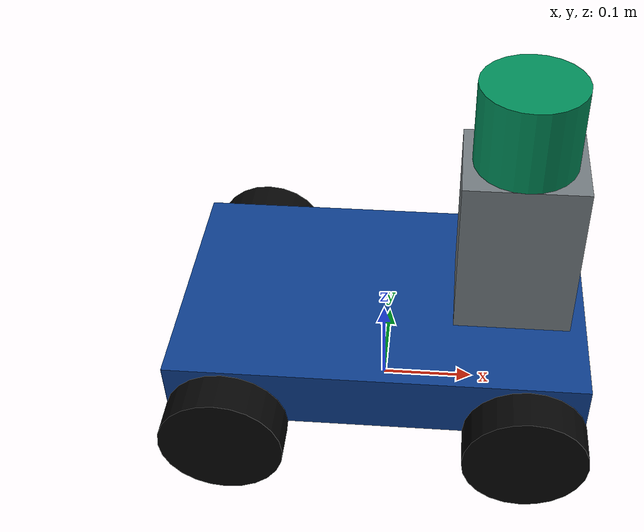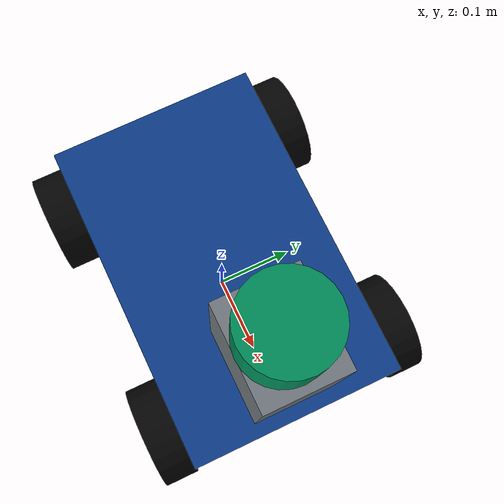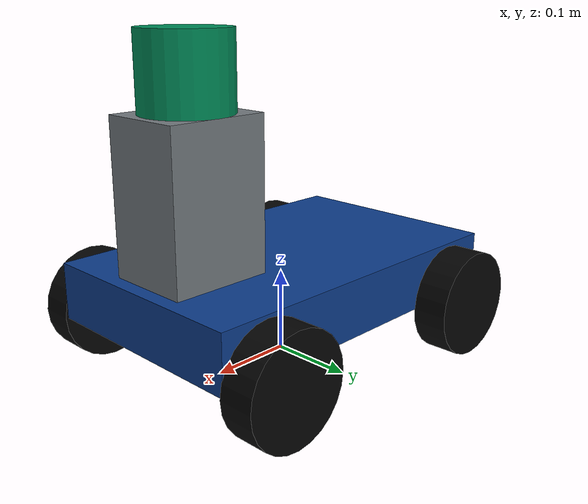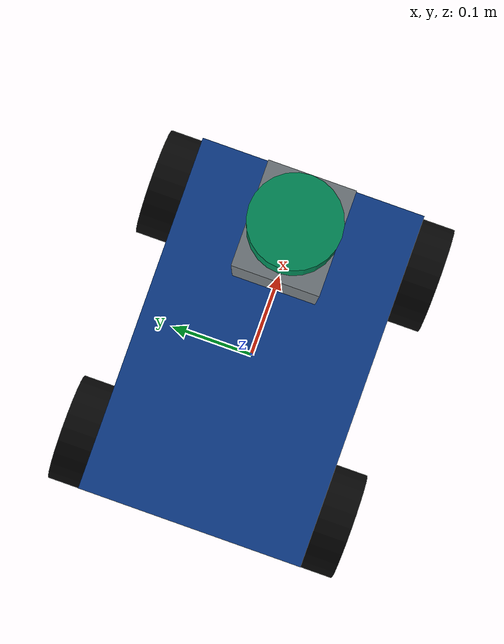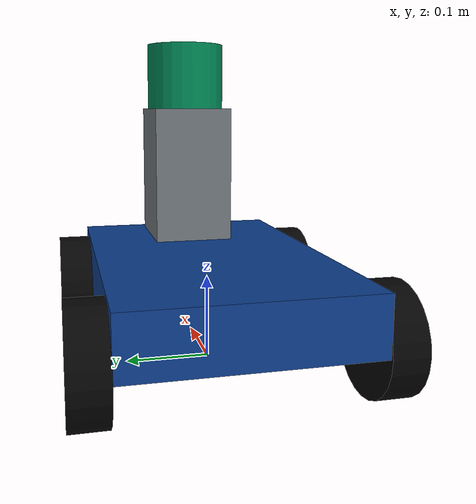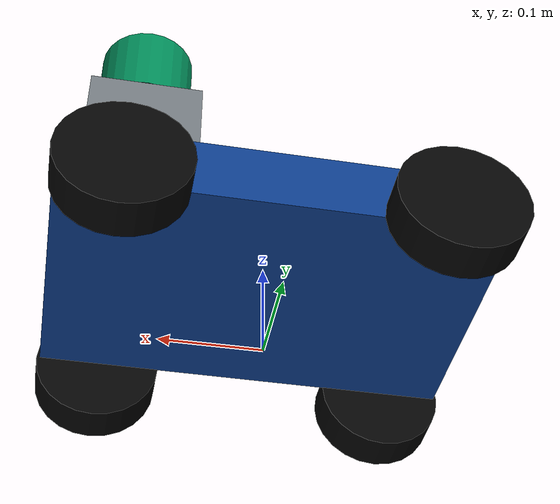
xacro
<?xml version="1.0"?>
<robot name="robis" xmlns:xacro="http://www.ros.org/wiki/xacro">
  <xacro:property name="pi_const" value="3.141592653589793"/>

  <!-- Dimensions are in meters. -->
  <xacro:property name="body_length" value="0.4235"/>
  <xacro:property name="body_width" value="0.268"/>
  <xacro:property name="body_height" value="0.06678"/>
  <xacro:property name="body_mass" value="12.0"/>

  <xacro:property name="wheel_radius" value="0.063"/>
  <xacro:property name="wheel_diameter" value="0.126"/>
  <xacro:property name="wheel_width" value="0.041"/>
  <xacro:property name="wheel_mass" value="0.6"/>
  <xacro:property name="wheel_x" value="0.152"/>
  <xacro:property name="wheel_y" value="0.154"/>

  <xacro:property name="riser_length" value="0.120"/>
  <xacro:property name="riser_width" value="0.100"/>
  <xacro:property name="riser_height" value="0.174"/>
  <xacro:property name="riser_mass" value="0.4"/>

  <xacro:property name="lidar_x" value="0.135"/>
  <xacro:property name="lidar_radius" value="0.051"/>
  <xacro:property name="lidar_height" value="0.085"/>
  <xacro:property name="lidar_mass" value="0.35"/>

  <xacro:property name="base_link_z" value="${wheel_radius + body_height / 2.0}"/>
  <xacro:property name="wheel_z" value="${-body_height / 2.0}"/>
  <xacro:property name="riser_z" value="${body_height / 2.0 + riser_height / 2.0}"/>
  <xacro:property name="lidar_z" value="${body_height / 2.0 + riser_height + lidar_height / 2.0}"/>

  <xacro:macro name="box_inertia" params="mass x y z">
    <inertial>
      <mass value="${mass}"/>
      <origin xyz="0 0 0" rpy="0 0 0"/>
      <inertia ixx="${mass * (y*y + z*z) / 12.0}" ixy="0" ixz="0"
               iyy="${mass * (x*x + z*z) / 12.0}" iyz="0"
               izz="${mass * (x*x + y*y) / 12.0}"/>
    </inertial>
  </xacro:macro>

  <xacro:macro name="cylinder_inertia_z" params="mass radius length">
    <inertial>
      <mass value="${mass}"/>
      <origin xyz="0 0 0" rpy="0 0 0"/>
      <inertia ixx="${mass * (3.0 * radius * radius + length * length) / 12.0}" ixy="0" ixz="0"
               iyy="${mass * (3.0 * radius * radius + length * length) / 12.0}" iyz="0"
               izz="${mass * radius * radius / 2.0}"/>
    </inertial>
  </xacro:macro>

  <material name="robis_body_blue">
    <color rgba="0.05 0.24 0.55 1.0"/>
  </material>
  <material name="robis_dark">
    <color rgba="0.02 0.02 0.02 1.0"/>
  </material>
  <material name="robis_lidar_green">
    <color rgba="0.0 0.55 0.35 1.0"/>
  </material>
  <material name="robis_riser_gray">
    <color rgba="0.45 0.48 0.50 1.0"/>
  </material>

  <link name="base_footprint"/>

  <joint name="base_footprint_joint" type="fixed">
    <parent link="base_footprint"/>
    <child link="base_link"/>
    <origin xyz="0 0 ${base_link_z}" rpy="0 0 0"/>
  </joint>

  <link name="base_link">
    <visual>
      <origin xyz="0 0 0" rpy="0 0 0"/>
      <geometry>
        <box size="${body_length} ${body_width} ${body_height}"/>
      </geometry>
      <material name="robis_body_blue"/>
    </visual>
    <collision>
      <origin xyz="0 0 0" rpy="0 0 0"/>
      <geometry>
        <box size="${body_length} ${body_width} ${body_height}"/>
      </geometry>
    </collision>
    <xacro:box_inertia mass="${body_mass}" x="${body_length}" y="${body_width}" z="${body_height}"/>
  </link>

  <xacro:macro name="wheel" params="prefix x y">
    <link name="${prefix}_wheel_link">
      <visual>
        <origin xyz="0 0 0" rpy="${pi_const/2.0} 0 0"/>
        <geometry>
          <cylinder radius="${wheel_radius}" length="${wheel_width}"/>
        </geometry>
        <material name="robis_dark"/>
      </visual>
      <collision>
        <origin xyz="0 0 0" rpy="${pi_const/2.0} 0 0"/>
        <geometry>
          <cylinder radius="${wheel_radius}" length="${wheel_width}"/>
        </geometry>
      </collision>
      <xacro:cylinder_inertia_z mass="${wheel_mass}" radius="${wheel_radius}" length="${wheel_width}"/>
    </link>
    <joint name="${prefix}_wheel_joint" type="continuous">
      <parent link="base_link"/>
      <child link="${prefix}_wheel_link"/>
      <origin xyz="${x} ${y} ${wheel_z}" rpy="0 0 0"/>
      <axis xyz="0 1 0"/>
      <limit effort="20" velocity="30"/>
      <dynamics damping="0.05" friction="0.0"/>
    </joint>
    <gazebo reference="${prefix}_wheel_link">
      <mu1>1.2</mu1>
      <mu2>1.2</mu2>
      <kp>1000000.0</kp>
      <kd>1.0</kd>
      <material>Gazebo/Black</material>
    </gazebo>
  </xacro:macro>

  <xacro:wheel prefix="front_left"  x="${ wheel_x}" y="${ wheel_y}"/>
  <xacro:wheel prefix="front_right" x="${ wheel_x}" y="${-wheel_y}"/>
  <xacro:wheel prefix="rear_left"   x="${-wheel_x}" y="${ wheel_y}"/>
  <xacro:wheel prefix="rear_right"  x="${-wheel_x}" y="${-wheel_y}"/>

  <link name="lidar_riser_link">
    <visual>
      <origin xyz="0 0 0" rpy="0 0 0"/>
      <geometry>
        <box size="${riser_length} ${riser_width} ${riser_height}"/>
      </geometry>
      <material name="robis_riser_gray"/>
    </visual>
    <collision>
      <origin xyz="0 0 0" rpy="0 0 0"/>
      <geometry>
        <box size="${riser_length} ${riser_width} ${riser_height}"/>
      </geometry>
    </collision>
    <xacro:box_inertia mass="${riser_mass}" x="${riser_length}" y="${riser_width}" z="${riser_height}"/>
  </link>

  <joint name="lidar_riser_joint" type="fixed">
    <parent link="base_link"/>
    <child link="lidar_riser_link"/>
    <origin xyz="${lidar_x} 0 ${riser_z}" rpy="0 0 0"/>
  </joint>

  <link name="laser_link">
    <visual>
      <origin xyz="0 0 0" rpy="0 0 0"/>
      <geometry>
        <cylinder radius="${lidar_radius}" length="${lidar_height}"/>
      </geometry>
      <material name="robis_lidar_green"/>
    </visual>
    <collision>
      <origin xyz="0 0 0" rpy="0 0 0"/>
      <geometry>
        <cylinder radius="${lidar_radius}" length="${lidar_height}"/>
      </geometry>
    </collision>
    <xacro:cylinder_inertia_z mass="${lidar_mass}" radius="${lidar_radius}" length="${lidar_height}"/>
  </link>

  <joint name="laser_joint" type="fixed">
    <parent link="base_link"/>
    <child link="laser_link"/>
    <origin xyz="${lidar_x} 0 ${lidar_z}" rpy="0 0 0"/>
  </joint>

  <gazebo reference="base_link">
    <material>Gazebo/Blue</material>
  </gazebo>
  <gazebo reference="lidar_riser_link">
    <material>Gazebo/Grey</material>
  </gazebo>
  <gazebo reference="laser_link">
    <material>Gazebo/Green</material>
    <sensor name="laser_scan" type="ray">
      <pose>0 0 0 0 0 0</pose>
      <visualize>true</visualize>
      <update_rate>10</update_rate>
      <ray>
        <scan>
          <horizontal>
            <samples>720</samples>
            <resolution>1</resolution>
            <min_angle>-3.14159265</min_angle>
            <max_angle>3.14159265</max_angle>
          </horizontal>
        </scan>
        <range>
          <min>0.12</min>
          <max>12.0</max>
          <resolution>0.01</resolution>
        </range>
        <noise>
          <type>gaussian</type>
          <mean>0.0</mean>
          <stddev>0.01</stddev>
        </noise>
      </ray>
      <plugin name="gazebo_ros_laser" filename="libgazebo_ros_laser.so">
        <topicName>/scan</topicName>
        <frameName>laser_link</frameName>
      </plugin>
    </sensor>
  </gazebo>

  <gazebo>
    <plugin name="robis_skid_steer_drive" filename="libgazebo_ros_skid_steer_drive.so">
      <robotNamespace>/</robotNamespace>
      <updateRate>50.0</updateRate>
      <leftFrontJoint>front_left_wheel_joint</leftFrontJoint>
      <rightFrontJoint>front_right_wheel_joint</rightFrontJoint>
      <leftRearJoint>rear_left_wheel_joint</leftRearJoint>
      <rightRearJoint>rear_right_wheel_joint</rightRearJoint>
      <wheelSeparation>${2.0 * wheel_y}</wheelSeparation>
      <wheelDiameter>${wheel_diameter}</wheelDiameter>
      <torque>20.0</torque>
      <commandTopic>cmd_vel</commandTopic>
      <odometryTopic>odom</odometryTopic>
      <odometryFrame>odom</odometryFrame>
      <robotBaseFrame>base_footprint</robotBaseFrame>
      <broadcastTF>true</broadcastTF>
      <covariance_x>0.0001</covariance_x>
      <covariance_y>0.0001</covariance_y>
      <covariance_yaw>0.01</covariance_yaw>
    </plugin>
  </gazebo>
</robot>
